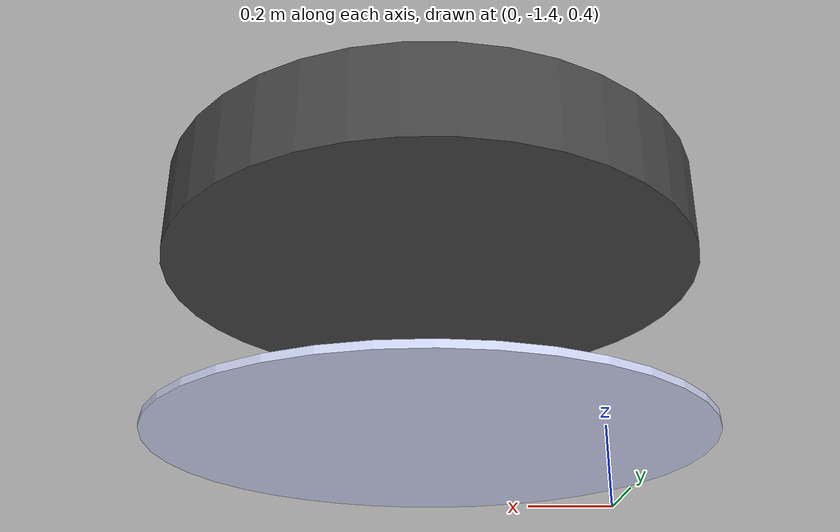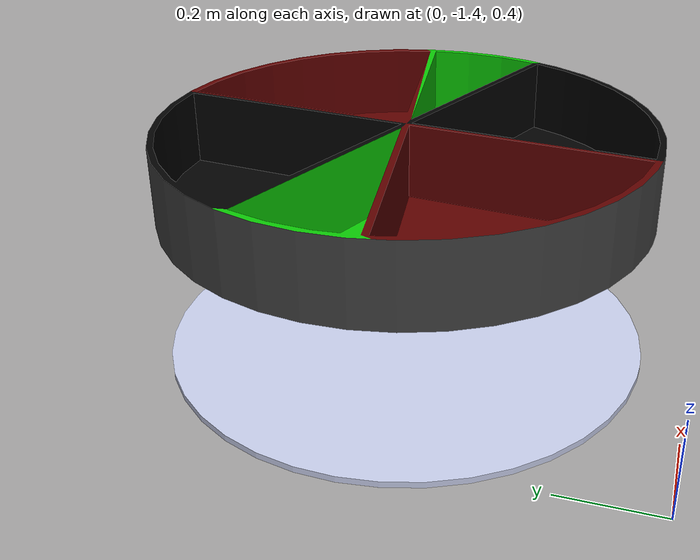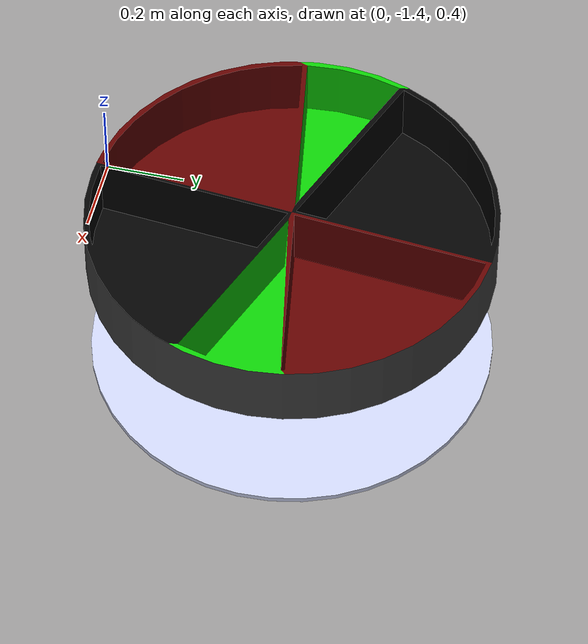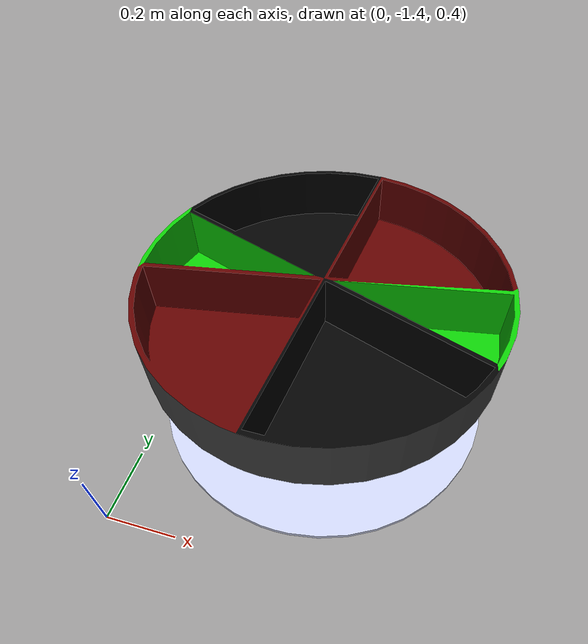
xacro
<robot name="Roulette_spin_robot">
  <link name="base_link">
    <inertial>
      <origin xyz="0.44277 -0.81157 0.38487" rpy="0 0 0" />
      <mass value="13.801" />
      <inertia ixx="0" ixy="0" ixz="0" iyy="0" iyz="0" izz="0" />
    </inertial>
    <visual>
      <origin xyz="0 0 0" rpy="0 0 0" />
      <geometry>
        <mesh filename="package://robosub_descriptions/meshes/Roulette_base.stl" />
      </geometry>
      <material
        name="">
        <color rgba="0.79608 0.82353 0.93725 1" />
      </material>
    </visual>
    <collision>
      <origin xyz="0 0 0" rpy="0 0 0" />
      <geometry>
        <mesh filename="package://robosub_descriptions/meshes/Roulette_base.stl" />
      </geometry>
    </collision>
  </link>
  <link
    name="table_link">
    <inertial>
      <origin
        xyz="0 0.050895 0"
        rpy="0 0 0" />
      <mass
        value="29.977" />
      <inertia ixx="0" ixy="0" ixz="0" iyy="0" iyz="0" izz="0" />
    </inertial>
    <visual>
      <origin xyz="0 0 0" rpy="0 0 0" />
      <geometry>
        <mesh filename="package://robosub_descriptions/meshes/Roulette_table.dae" />
      </geometry>
    </visual>
    <collision>
      <origin xyz="0 0 0" rpy="0 0 0" />
      <geometry>
        <mesh filename="package://robosub_descriptions/meshes/Roulette_table.stl" />
      </geometry>
    </collision>
  </link>
  <joint
    name="table_joint"
    type="continuous">
    <origin
      xyz="0.44277 -0.81157 0.69602"
      rpy="1.5708 -6.034E-18 -0.098706" />
    <parent
      link="base_link" />
    <child
      link="table_link" />
    <axis xyz="0 1 0" />
    <dynamics damping="0.0" friction="0.0"/>
    <limit effort="1000.0" velocity="10.0" />
  </joint>
  <transmission name="table_transmission">
    <type>transmission_interface/SimpleTransmission</type>
      <joint name="table_joint">
        <hardwareInterface>hardware_interface/VelocityJointInterface</hardwareInterface>
      </joint>
      <actuator name="table_servo">
        <hardwareInterface>hardware_interface/VelocityJointInterface</hardwareInterface>
        <mechanicalReduction>1</mechanicalReduction>
      </actuator>
  </transmission>
  <gazebo>
    <plugin name="gazebo_ros_control" filename="libgazebo_ros_control.so">
      <robotNamespace>/Roulette_spin_1</robotNamespace>
    </plugin>
  </gazebo>
</robot>
